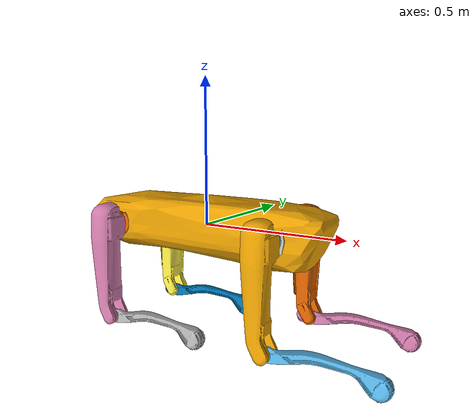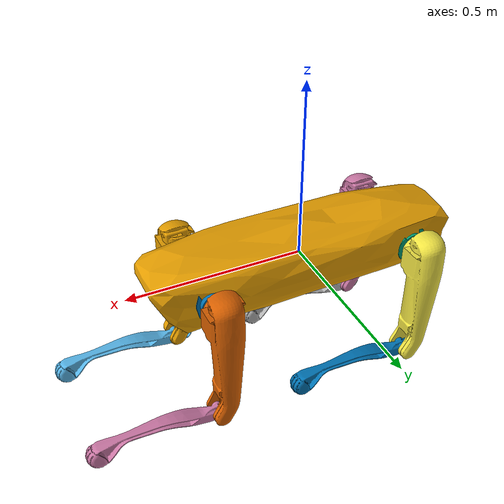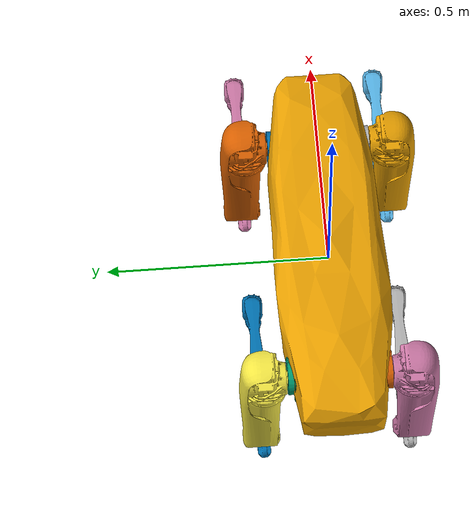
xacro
<?xml version="1.0" ?>
<robot name="spot" xmlns:xacro="http://www.ros.org/wiki/xacro">

    <!-- spot -->
    <xacro:include filename="$(find spot_description)/urdf/spot.urdf.xacro" />

    <!-- jsk_head_mount_frame -->
    <link name="jsk_head_mount_frame">
      <inertial>
        <origin xyz="0.0 0.0 0.0" rpy="0 0 0" />
        <mass value="0.0000000001" />
        <inertia ixx="0.0000000001" ixy="0.0000000001" ixz="0.0000000001"
            iyy="0.0000000001" iyz="0.0000000001" izz="0.0000000001" />
      </inertial>
    </link>
    <joint name="body_to_jsk_head_mount_joint" type="fixed" >
        <origin rpy="0 0 0" xyz="0.29 0 0.09" />
        <parent link="body" />
        <child link="jsk_head_mount_frame" />
    </joint>

    <!-- jsk_payload_frame -->
    <link name="jsk_payload_frame">
      <inertial>
        <origin xyz="0.0 0.0 0.0" rpy="0 0 0" />
        <mass value="0.0000000001" />
        <inertia ixx="0.0000000001" ixy="0.0000000001" ixz="0.0000000001"
            iyy="0.0000000001" iyz="0.0000000001" izz="0.0000000001" />
      </inertial>
    </link>
    <joint name="front_rail_to_jsk_payload_frame" type="fixed" >
        <origin rpy="0 0 0" xyz="-0.3 0 0" />
        <parent link="front_rail" />
        <child link="jsk_payload_frame" />
    </joint>

    <!-- insta 360 air -->
    <link name="insta360_link">
      <inertial>
        <origin xyz="0.0 0.0 0.0" rpy="0 0 0" />
        <mass value="0.0000000001" />
        <inertia ixx="0.0000000001" ixy="0.0000000001" ixz="0.0000000001"
            iyy="0.0000000001" iyz="0.0000000001" izz="0.0000000001" />
      </inertial>
    </link>
    <joint name="jsk_payload_frame_to_insta_360_joint" type="fixed">
        <origin rpy="0 0 0" xyz="0.1 0 0.5" />
        <parent link="jsk_payload_frame" />
        <child link="insta360_link" />
    </joint>

</robot>

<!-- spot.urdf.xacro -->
<robot name="spot" xmlns:xacro="http://www.ros.org/wiki/xacro">
    <link name="body">
        <visual>
            <geometry>
                <mesh filename="package://spot_description/meshes/base/visual/body.dae" />
            </geometry>
        </visual>
        <collision>
            <geometry>
                <mesh filename="package://spot_description/meshes/base/collision/body_collision.stl" />
            </geometry>
        </collision>
    </link>

    <link name="base_link">
        <inertial>
            <origin rpy="0.0 0.0 0.0" xyz="0.006394396536052227 -9.812158532440662e-05 0.0009113792330026627"/>
            <mass value="32.86"/>
            <inertia ixx="0.13143999874591827" ixy="0.0" ixz="0.0" iyy="0.13143999874591827" iyz="0.0" izz="0.13143999874591827"/>
        </inertial>
    </link>
    <joint name="base_link_joint" type="fixed">
        <origin xyz="0 0 0" rpy="0 0 0" />
        <parent link="body" />
        <child link="base_link" />
    </joint>

    <link name="front_rail">
        <inertial>
            <origin rpy="0. 0. 0." xyz="0. 0. 0."/>
            <mass value="1.0e-6"/>
            <inertia ixx="1.0e-9" ixy="0.0" ixz="0.0" iyy="1.0e-9" iyz="0.0" izz="1.0e-9"/>
        </inertial>
    </link>
    <joint name="front_rail_joint" type="fixed">
        <origin xyz="0.223 0 0.0805" rpy="0 0 0" />
        <parent link="body" />
        <child link="front_rail" />
    </joint>

    <link name="rear_rail">
        <inertial>
            <origin rpy="0. 0. 0." xyz="0. 0. 0."/>
            <mass value="1.0e-6"/>
            <inertia ixx="1.0e-9" ixy="0.0" ixz="0.0" iyy="1.0e-9" iyz="0.0" izz="1.0e-9"/>
        </inertial>
    </link>
    <joint name="rear_rail_joint" type="fixed">
        <origin xyz="-0.223 0 0.0805" rpy="0 0 0" />
        <parent link="body" />
        <child link="rear_rail" />
    </joint>

    <link name="front_left_hip">
        <visual>
            <geometry>
                <mesh filename="package://spot_description/meshes/base/visual/front_left_hip.dae" />
            </geometry>
        </visual>
        <collision>
            <geometry>
                <mesh filename="package://spot_description/meshes/base/collision/front_left_hip_collision.stl" />
            </geometry>
        </collision>
        <inertial>
            <origin rpy="-0.716521349312305 0.02956473059648479 0.03655230014702582" xyz="-0.005374345928430557 0.012841847725212574 9.875232353806496e-05"/>
            <mass value="1.68"/>
            <inertia ixx="0.0021147398873455382" ixy="0.0" ixz="0.0" iyy="0.0018129577956607131" iyz="0.0" izz="0.002265435737304666"/>
        </inertial>
    </link>
    <joint name="front_left_hip_x" type="revolute">
        <origin xyz="0.29785 0.05500 0.00000" rpy="0 0 0" />
        <axis xyz="1 0 0" />
        <parent link="body" />
        <child link="front_left_hip" />
        <limit effort="1000" velocity="1000.00" lower="-0.78539816339744827899" upper="0.78539816339744827899" />
    </joint>
    <link name="front_left_upper_leg">
        <visual>
            <geometry>
                <mesh filename="package://spot_description/meshes/base/visual/front_left_upper_leg.dae" />
            </geometry>
        </visual>
        <collision>
            <geometry>
                <mesh filename="package://spot_description/meshes/base/collision/front_left_upper_leg_collision.stl" />
            </geometry>
        </collision>
        <inertial>
            <origin rpy="-0.26437828203369795 -0.04853174570753804 0.024046963096353124" xyz="0.005142373498529196 -0.0024323679972440004 -0.12100915610790253"/>
            <mass value="2.34"/>
            <inertia ixx="0.02755964961185679" ixy="0.0" ixz="0.0" iyy="0.027354914287651046" iyz="0.0" izz="0.002848145546743553"/>
        </inertial>
    </link>
    <joint name="front_left_hip_y" type="revolute">
        <origin xyz="0.0 0.110945 0.0" rpy="0 0 0" />
        <axis xyz="0 1 0" />
        <parent link="front_left_hip" />
        <child link="front_left_upper_leg" />
        <limit effort="1000" velocity="1000.00" lower="-0.89884456477707963539" upper="2.2951079663725435509" />
    </joint>
    <link name="front_left_lower_leg">
        <visual>
            <geometry>
                <mesh filename="package://spot_description/meshes/base/visual/front_left_lower_leg.dae" />
            </geometry>
        </visual>
        <collision>
            <geometry>
                <mesh filename="package://spot_description/meshes/base/collision/front_left_lower_leg_collision.stl" />
            </geometry>
        </collision>
        <inertial>
            <origin rpy="-0.007266925694167092 -0.009591807116834161 0.00035255970529224356" xyz="0.00225794012658298 4.607596201822162e-05 -0.1800822913646698"/>
            <mass value="0.35"/>
            <inertia ixx="0.003999022654901177" ixy="0.0" ixz="0.0" iyy="0.0040503157598010785" iyz="0.0" izz="0.0001493402097647426"/>
        </inertial>
    </link>
    <joint name="front_left_knee" type="revolute">
        <origin xyz="0.025 0.000 -0.3205" rpy="0 0 0" />
        <axis xyz="0 1 0" />
        <parent link="front_left_upper_leg" />
        <child link="front_left_lower_leg" />
        <limit effort="1000" velocity="1000.00" lower="-2.7929" upper="-0.254801" />
    </joint>
    <link name="front_right_hip">
        <visual>
            <geometry>
                <mesh filename="package://spot_description/meshes/base/visual/front_right_hip.dae" />
            </geometry>
        </visual>
        <collision>
            <geometry>
                <mesh filename="package://spot_description/meshes/base/collision/front_right_hip_collision.stl" />
            </geometry>
        </collision>
        <inertial>
            <origin rpy="0.7165213493123055 -0.02956473059648479 0.03655230014702582" xyz="-0.005374345928430557 -0.012841847725212574 -9.875232353806496e-05"/>
            <mass value="1.68"/>
            <inertia ixx="0.0021147398873455382" ixy="0.0" ixz="0.0" iyy="0.0018129577956607131" iyz="0.0" izz="0.002265435737304666"/>
        </inertial>
    </link>
    <joint name="front_right_hip_x" type="revolute">
        <origin xyz="0.29785 -0.05500 0.00000" rpy="0 0 0" />
        <axis xyz="1 0 0" />
        <parent link="body" />
        <child link="front_right_hip" />
        <limit effort="1000" velocity="1000.00" lower="-0.78539816339744827899" upper="0.78539816339744827899" />
    </joint>
    <link name="front_right_upper_leg">
        <visual>
            <geometry>
                <mesh filename="package://spot_description/meshes/base/visual/front_right_upper_leg.dae" />
            </geometry>
        </visual>
        <collision>
            <geometry>
                <mesh filename="package://spot_description/meshes/base/collision/front_right_upper_leg_collision.stl" />
            </geometry>
        </collision>
        <inertial>
            <origin rpy="0.2643905306958363 -0.04853174688302708 -0.024046943559834943" xyz="0.005142373498529196 0.0024323677644133568 -0.12100915610790253"/>
            <mass value="2.34"/>
            <inertia ixx="0.02755964678927691" ixy="0.0" ixz="0.0" iyy="0.02735491706466737" iyz="0.0" izz="0.0028481453594764797"/>
        </inertial>
    </link>
    <joint name="front_right_hip_y" type="revolute">
        <origin xyz="0.0 -0.110945 0.0" rpy="0 0 0" />
        <axis xyz="0 1 0" />
        <parent link="front_right_hip" />
        <child link="front_right_upper_leg" />
        <limit effort="1000" velocity="1000.00" lower="-0.89884456477707963539" upper="2.2951079663725435509" />
    </joint>
    <link name="front_right_lower_leg">
        <visual>
            <geometry>
                <mesh filename="package://spot_description/meshes/base/visual/front_right_lower_leg.dae" />
            </geometry>
        </visual>
        <collision>
            <geometry>
                <mesh filename="package://spot_description/meshes/base/collision/front_right_lower_leg_collision.stl" />
            </geometry>
        </collision>
        <inertial>
            <origin rpy="-0.007266925694167092 -0.009591807116834161 0.00035255970529224356" xyz="0.00225794012658298 4.607596201822162e-05 -0.1800822913646698"/>
            <mass value="0.35"/>
            <inertia ixx="0.003999022654901177" ixy="0.0" ixz="0.0" iyy="0.0040503157598010785" iyz="0.0" izz="0.0001493402097647426"/>
        </inertial>
    </link>
    <joint name="front_right_knee" type="revolute">
        <origin xyz="0.025 0.000 -0.3205" rpy="0 0 0" />
        <axis xyz="0 1 0" />
        <parent link="front_right_upper_leg" />
        <child link="front_right_lower_leg" />
        <limit effort="1000" velocity="1000.00" lower="-2.7929" upper="-0.247563" />
    </joint>
    <link name="rear_left_hip">
        <visual>
            <geometry>
                <mesh filename="package://spot_description/meshes/base/visual/rear_left_hip.dae" />
            </geometry>
        </visual>
        <collision>
            <geometry>
                <mesh filename="package://spot_description/meshes/base/collision/rear_left_hip_collision.stl" />
            </geometry>
        </collision>
        <inertial>
            <origin rpy="0.7165213493123055 -0.02956473059648479 0.03655230014702582" xyz="-0.005374345928430557 -0.012841847725212574 -9.875232353806496e-05"/>
            <mass value="1.68"/>
            <inertia ixx="0.0021147398873455382" ixy="0.0" ixz="0.0" iyy="0.0018129577956607131" iyz="0.0" izz="0.002265435737304666"/>
        </inertial>
    </link>
    <joint name="rear_left_hip_x" type="revolute">
        <origin xyz="-0.29785 0.05500 0.00000" rpy="0 0 0" />
        <axis xyz="1 0 0" />
        <parent link="body" />
        <child link="rear_left_hip" />
        <limit effort="1000" velocity="1000.00" lower="-0.78539816339744827899" upper="0.78539816339744827899" />
    </joint>
    <link name="rear_left_upper_leg">
        <visual>
            <geometry>
                <mesh filename="package://spot_description/meshes/base/visual/rear_left_upper_leg.dae" />
            </geometry>
        </visual>
        <collision>
            <geometry>
                <mesh filename="package://spot_description/meshes/base/collision/rear_left_upper_leg_collision.stl" />
            </geometry>
        </collision>
        <inertial>
            <origin rpy="-0.26437828203369795 -0.04853174570753804 0.024046963096353124" xyz="0.005142373498529196 -0.0024323679972440004 -0.12100915610790253"/>
            <mass value="2.34"/>
            <inertia ixx="0.02755964961185679" ixy="0.0" ixz="0.0" iyy="0.027354914287651046" iyz="0.0" izz="0.002848145546743553"/>
        </inertial>
    </link>
    <joint name="rear_left_hip_y" type="revolute">
        <origin xyz="0.0 0.110945 0.0" rpy="0 0 0" />
        <axis xyz="0 1 0" />
        <parent link="rear_left_hip" />
        <child link="rear_left_upper_leg" />
        <limit effort="1000" velocity="1000.00" lower="-0.89884456477707963539" upper="2.2951079663725435509" />
    </joint>
    <link name="rear_left_lower_leg">
        <visual>
            <geometry>
                <mesh filename="package://spot_description/meshes/base/visual/rear_left_lower_leg.dae" />
            </geometry>
        </visual>
        <collision>
            <geometry>
                <mesh filename="package://spot_description/meshes/base/collision/rear_left_lower_leg_collision.stl" />
            </geometry>
        </collision>
        <inertial>
            <origin rpy="-0.007266925694167092 -0.009591807116834161 0.00035255970529224356" xyz="0.00225794012658298 4.607596201822162e-05 -0.1800822913646698"/>
            <mass value="0.35"/>
            <inertia ixx="0.003999022654901177" ixy="0.0" ixz="0.0" iyy="0.0040503157598010785" iyz="0.0" izz="0.0001493402097647426"/>
        </inertial>
    </link>
    <joint name="rear_left_knee" type="revolute">
        <origin xyz="0.025 0.000 -0.3205" rpy="0 0 0" />
        <axis xyz="0 1 0" />
        <parent link="rear_left_upper_leg" />
        <child link="rear_left_lower_leg" />
        <limit effort="1000" velocity="1000.00" lower="-2.7929" upper="-0.267153" />
    </joint>
    <link name="rear_right_hip">
        <visual>
            <geometry>
                <mesh filename="package://spot_description/meshes/base/visual/rear_right_hip.dae" />
            </geometry>
        </visual>
        <collision>
            <geometry>
                <mesh filename="package://spot_description/meshes/base/collision/rear_right_hip_collision.stl" />
            </geometry>
        </collision>
        <inertial>
            <origin rpy="0.7165213493123055 -0.02956473059648479 0.03655230014702582" xyz="-0.005374345928430557 -0.012841847725212574 -9.875232353806496e-05"/>
            <mass value="1.68"/>
            <inertia ixx="0.0021147398873455382" ixy="0.0" ixz="0.0" iyy="0.0018129577956607131" iyz="0.0" izz="0.002265435737304666"/>
        </inertial>
    </link>
    <joint name="rear_right_hip_x" type="revolute">
        <origin xyz="-0.29785 -0.05500 0.00000" rpy="0 0 0" />
        <axis xyz="1 0 0" />
        <parent link="body" />
        <child link="rear_right_hip" />
        <limit effort="1000" velocity="1000.00" lower="-0.78539816339744827899" upper="0.78539816339744827899" />
    </joint>
    <link name="rear_right_upper_leg">
        <visual>
            <geometry>
                <mesh filename="package://spot_description/meshes/base/visual/rear_right_upper_leg.dae" />
            </geometry>
        </visual>
        <collision>
            <geometry>
                <mesh filename="package://spot_description/meshes/base/collision/rear_right_upper_leg_collision.stl" />
            </geometry>
        </collision>
        <inertial>
            <origin rpy="0.2643905306958363 -0.04853174688302708 -0.024046943559834943" xyz="0.005142373498529196 0.0024323677644133568 -0.12100915610790253"/>
            <mass value="2.34"/>
            <inertia ixx="0.02755964678927691" ixy="0.0" ixz="0.0" iyy="0.02735491706466737" iyz="0.0" izz="0.0028481453594764797"/>
        </inertial>
    </link>
    <joint name="rear_right_hip_y" type="revolute">
        <origin xyz="0.0 -0.110945 0.0" rpy="0 0 0" />
        <axis xyz="0 1 0" />
        <parent link="rear_right_hip" />
        <child link="rear_right_upper_leg" />
        <limit effort="1000" velocity="1000.00" lower="-0.89884456477707963539" upper="2.2951079663725435509" />
    </joint>
    <link name="rear_right_lower_leg">
        <visual>
            <geometry>
                <mesh filename="package://spot_description/meshes/base/visual/rear_right_lower_leg.dae" />
            </geometry>
        </visual>
        <collision>
            <geometry>
                <mesh filename="package://spot_description/meshes/base/collision/rear_right_lower_leg_collision.stl" />
            </geometry>
        </collision>
        <inertial>
            <origin rpy="-0.007266925694167092 -0.009591807116834161 0.00035255970529224356" xyz="0.00225794012658298 4.607596201822162e-05 -0.1800822913646698"/>
            <mass value="0.35"/>
            <inertia ixx="0.003999022654901177" ixy="0.0" ixz="0.0" iyy="0.0040503157598010785" iyz="0.0" izz="0.0001493402097647426"/>
        </inertial>
    </link>
    <joint name="rear_right_knee" type="revolute">
        <origin xyz="0.025 0.000 -0.3205" rpy="0 0 0" />
        <axis xyz="0 1 0" />
        <parent link="rear_right_upper_leg" />
        <child link="rear_right_lower_leg" />
        <limit effort="1000" velocity="1000.00" lower="-2.7929" upper="-0.257725" />
    </joint>

    <!-- Standard accessories. -->

    <!-- Optional custom includes. -->
</robot>
